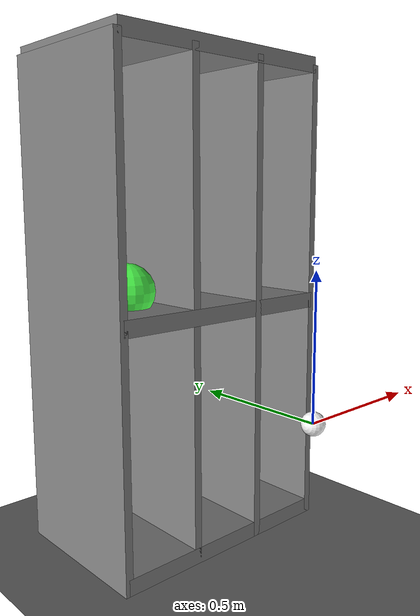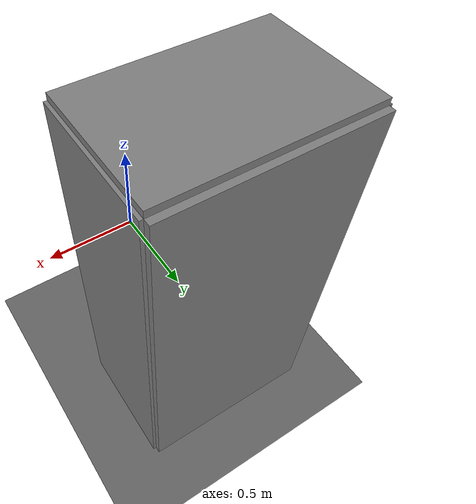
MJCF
<!-- Credit: adapted from Mujoco Menagerie -->
<mujoco model="ur5e">
  <compiler angle="radian" meshdir="universal_robots_ur5e/assets" autolimits="true"/>

  <option integrator="implicitfast"/>

  <default>
    <default class="ur5e">
      <material specular="0.5" shininess="0.25"/>
      <joint axis="0 1 0" range="-6.28319 6.28319" armature="0.1"/>
      <general gaintype="fixed" biastype="affine" ctrlrange="-6.2831 6.2831" gainprm="2000" biasprm="0 -2000 -400"
        forcerange="-150 150"/>
      <default class="size3">
        <default class="size3_limited">
          <joint range="-3.1415 3.1415"/>
          <general ctrlrange="-3.1415 3.1415"/>
        </default>
      </default>
      <default class="size1">
        <general gainprm="500" biasprm="0 -500 -100" forcerange="-28 28"/>
      </default>
      <default class="visual">
        <geom type="mesh" contype="0" conaffinity="0" group="2"/>
      </default>
      <default class="collision">
        <geom type="capsule" group="3"/>
        <default class="eef_collision">
          <geom type="cylinder"/>
        </default>
      </default>
      <site size="0.001" rgba="0.5 0.5 0.5 0.3" group="4"/>
    </default>
  </default>

  <asset>
    <texture builtin="checker" height="100" name="texplane" rgb1="0 0 0" rgb2="0.8 0.8 0.8" type="2d" width="100"/>
    <material name="MatPlane" reflectance="0.5" shininess="1" specular="1" texrepeat="60 60" texture="texplane"/>

    <material class="ur5e" name="black" rgba="0.033 0.033 0.033 1"/>
    <material class="ur5e" name="jointgray" rgba="0.278 0.278 0.278 1"/>
    <material class="ur5e" name="linkgray" rgba="0.82 0.82 0.82 1"/>
    <material class="ur5e" name="urblue" rgba="0.49 0.678 0.8 1"/>

    <mesh file="base_0.obj"/>
    <mesh file="base_1.obj"/>
    <mesh file="shoulder_0.obj"/>
    <mesh file="shoulder_1.obj"/>
    <mesh file="shoulder_2.obj"/>
    <mesh file="upperarm_0.obj"/>
    <mesh file="upperarm_1.obj"/>
    <mesh file="upperarm_2.obj"/>
    <mesh file="upperarm_3.obj"/>
    <mesh file="forearm_0.obj"/>
    <mesh file="forearm_1.obj"/>
    <mesh file="forearm_2.obj"/>
    <mesh file="forearm_3.obj"/>
    <mesh file="wrist1_0.obj"/>
    <mesh file="wrist1_1.obj"/>
    <mesh file="wrist1_2.obj"/>
    <mesh file="wrist2_0.obj"/>
    <mesh file="wrist2_1.obj"/>
    <mesh file="wrist2_2.obj"/>
    <mesh file="wrist3.obj"/>
  </asset>

  <worldbody>
    <geom conaffinity="1" condim="3" material="MatPlane" name="floor" pos="0 0 -0.6" size="100 100 40" type="plane"/>
    <camera name="overview" pos="0.5 0.15 0.5" xyaxes="1 0.5 0 0 0 1" fovy="120"/>

    <!-- based on the tessco 36 inch wide, 24 inch deep, 72 inch tall storage cabinet -->
    <!-- that's 0.9144 x 0.6096 x 1.8288 meters -->
    <!-- half-dimensions are 0.4572 x 0.3048 x 0.9144 meters -->
    <!-- the shelf's origin is at the floor, in the center of the negative space. -->
    <!-- the shelf's entrance is at y = 0.7 - 0.3048 = ~0.4 -->
    <!-- the shelf's table is at z = -0.6 + 0.9144 = 0.3 -->
    <body name="shelf" pos="0.0 0.7 -0.6">
      <geom name="table"  pos="0.0000  0.0000 0.9144" size="0.4572 0.3048 0.0300" type="box" rgba="0.5 0.5 0.5 1" contype="0" conaffinity="0"/>
      <geom name="bottom" pos="0.0000  0.0000 0.0300" size="0.4572 0.3048 0.0300" type="box" rgba="0.5 0.5 0.5 1" contype="0" conaffinity="0"/>
      <geom name="top"    pos="0.0000  0.0000 1.8288" size="0.4572 0.3048 0.0300" type="box" rgba="0.5 0.5 0.5 1" contype="0" conaffinity="0"/>
      <geom name="bar1"   pos="-0.4572 0.0000 0.9144" size="0.0150 0.3048 0.9144" type="box" rgba="0.5 0.5 0.5 1" contype="0" conaffinity="0"/>
      <geom name="first_third_wall"   pos="-0.1524 0.0000 0.9144" size="0.0150 0.3048 0.9144" type="box" rgba="0.5 0.5 0.5 1" contype="0" conaffinity="0"/>
      <geom name="first_second_wall"  pos="0.1524  0.0000 0.9144" size="0.0150 0.3048 0.9144" type="box" rgba="0.5 0.5 0.5 1" contype="0" conaffinity="0"/>
      <geom name="bar3"   pos="0.4572  0.0000 0.9144" size="0.0150 0.3048 0.9144" type="box" rgba="0.5 0.5 0.5 1" contype="0" conaffinity="0"/>
      <geom name="back"   pos="0.0000  0.3048 0.9144" size="0.4572 0.0300 0.9144" type="box" rgba="0.5 0.5 0.5 1" contype="0" conaffinity="0"/>
    </body>

    <body name="goal_marker" pos="-0.3 0.6 0.4" gravcomp="1">
      <freejoint/>
      <geom name="goal_marker_geom" size="0.1" type="sphere" rgba="0.3 1 0.3 1" contype="0" conaffinity="0"/>
    </body>

    <body name="tablelink" pos="0 .2 0">
        <geom name="table_geom" group="4" pos="0.0 0.0 0.0" size="2.8 2.4 0.1" type="plane" mass="10" friction="0.2 0.005 0.0001" contype="0" conaffinity="0"/>
    </body>

    <body name="hand" pos="0 0 0" quat="0 -1 1 0" gravcomp="1"> <!-- Need to rotate by 180 degrees on y-axis, then 90 degrees z-axis -->
      <joint name="hand_x" type="slide" pos="0 0 0" axis="0 -1 0" range="-0.4 0.4"/> <!-- Choose axes relative to hand so joint lengths correspond to the world position -->
      <joint name="hand_y" type="slide" pos="0 0 0" axis="-1 0 0" range="0.25 0.85"/>
      <joint name="hand_z" type="slide" pos="0 0 0" axis="0 0 -1" range="-0.5 0.5"/>
      <geom name="hand_geom" rgba="1 1 1 1" type="sphere" size="0.04" pos="0 0 0" quat="1 1 0 0" contype="0" conaffinity="0"/>
    </body>
  </worldbody>

  <actuator>
    <general class="ur5e" name="actuator_hand_x" joint="hand_x" gainprm="1000" biasprm="0 -1000 -100"/>
    <general class="ur5e" name="actuator_hand_y" joint="hand_y" gainprm="1000" biasprm="0 -1000 -100"/>
    <general class="ur5e" name="actuator_hand_z" joint="hand_z" gainprm="1000" biasprm="0 -1000 -100"/>
  </actuator>
</mujoco>
